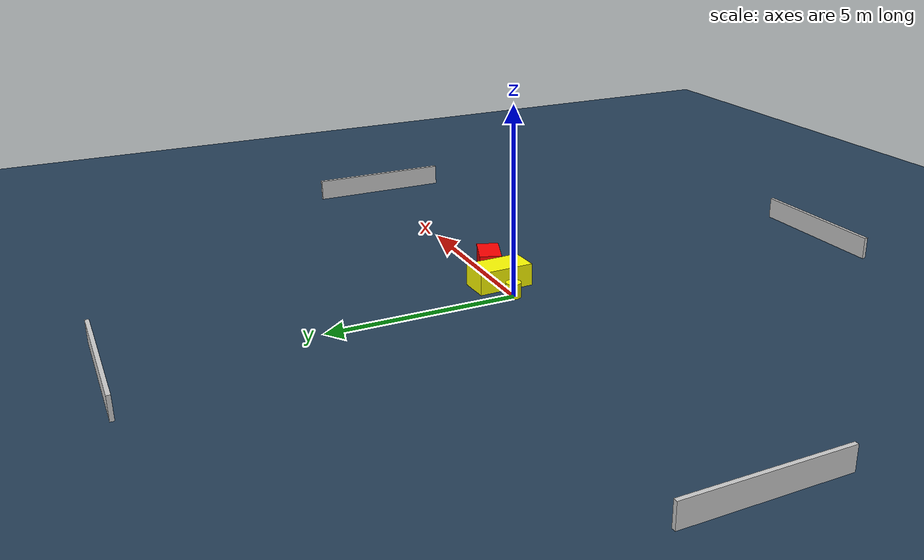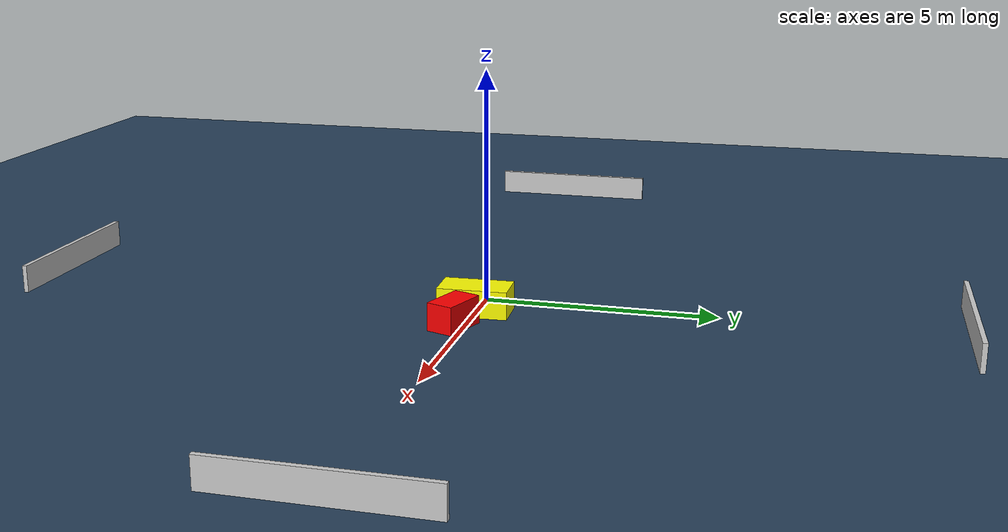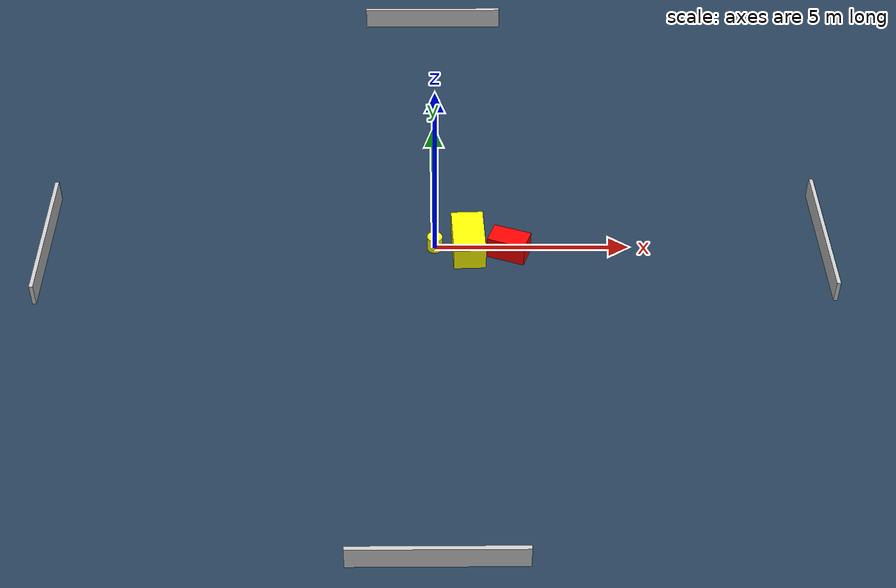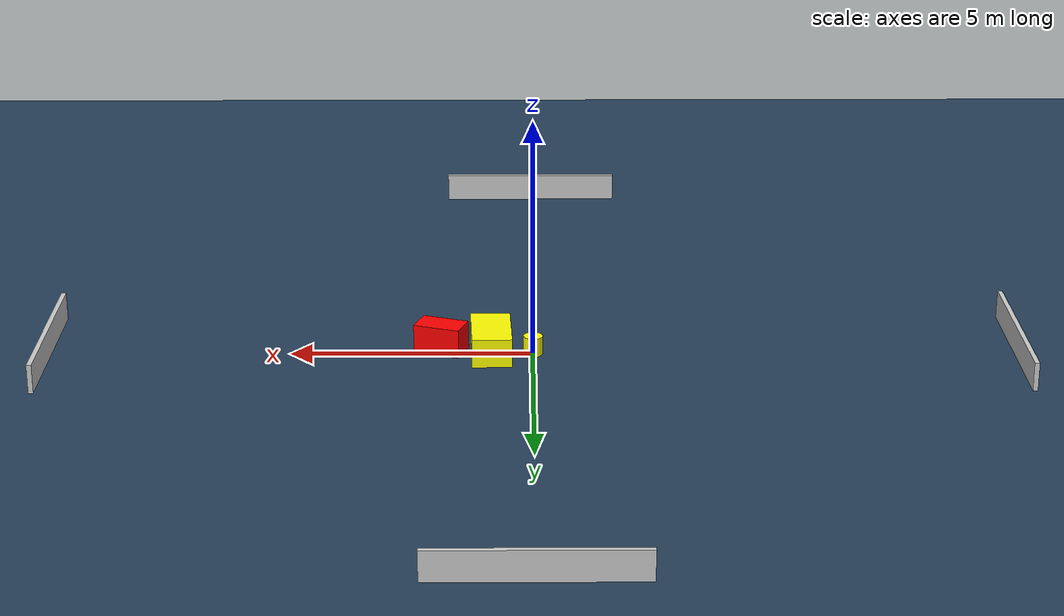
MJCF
<?xml version="1.0" ?>
<mujoco model="generated_environment">
  <option timestep="0.01" integrator="RK4" cone="elliptic"/>
  <default>
    <geom density="1"/>
  </default>
  <asset>
    <texture builtin="gradient" height="3072" name="skybox" rgb1="0.3 0.5 0.7" rgb2="0 0 0" type="skybox" width="512"/>
    <texture builtin="checker" height="300" name="groundplane" rgb1="0.2 0.3 0.4" rgb2="0.1 0.2 0.3" type="2d" width="300"/>
    <material name="groundplane" reflectance="0.2" texrepeat="5 5" texture="groundplane"/>
  </asset>
  <worldbody>
    <light dir="0 0 -1" directional="true" pos="0 0 1.5"/>
    <geom condim="3" friction="0.5 0.005 0.001" material="groundplane" name="floor" pos="0 0 0" size="0 0 0.05" type="plane"/>
    <body name="walls">
      <geom name="wall_1" condim="4" pos="-10.0 0.0 0.3" rgba="0.800000011920929 0.800000011920929 0.800000011920929 1.0" size="0.05 2.0 0.3" type="box"/>
      <geom name="wall_2" condim="4" pos="10.0 0.0 0.3" rgba="0.800000011920929 0.800000011920929 0.800000011920929 1.0" size="0.05 2.0 0.3" type="box"/>
      <geom name="wall_3" condim="4" pos="0.0 -10.0 0.3" rgba="0.800000011920929 0.800000011920929 0.800000011920929 1.0" size="2.0 0.05 0.3" type="box"/>
      <geom name="wall_4" condim="4" pos="0.0 10.0 0.3" rgba="0.800000011920929 0.800000011920929 0.800000011920929 1.0" size="2.0 0.05 0.3" type="box"/>
    </body>
    <body name="robot">
      <joint name="joint_x" type="slide" pos="0 0 0" axis="1 0 0"/>
      <joint name="joint_y" type="slide" pos="0 0 0" axis="0 1 0"/>
      <geom name="robot" type="cylinder" pos="0.0 0.0 0.2" size="0.2 0.2 0.0" mass="5.0" friction="1.0 0.005 0.0001" condim="4" rgba="1.0 1.0 0.0 1.0"/>
    </body>
    <body name="obstacle_1_movable">
      <geom name="obstacle_1_movable" condim="4" pos="0.8629943237929836 -0.017454140723504305 0.3" euler="0 0 2.1314921552074395" friction="0.0 0.005 0.001" rgba="1.0 1.0 0.0 1.0" size="0.41228042834662926 0.7481004462557295 0.3" type="box" mass="0.1"/>
      <joint type="free"/>
    </body>
    <body name="obstacle_2_static">
      <geom name="obstacle_2_static" condim="4" pos="1.8995948288718085 -0.21169033366712062 0.3" euler="0 0 249.97702279752383" friction="0.0 0.005 0.001" rgba="1.0 0.0 0.0 1.0" size="0.29705799189849114 0.49519873183439705 0.3" type="box"/>
    </body>
  </worldbody>
  <actuator>
    <motor name="actuator_x" joint="joint_x" gear="1" ctrlrange="-1 1"/>
    <motor name="actuator_y" joint="joint_y" gear="1" ctrlrange="-1 1"/>
  </actuator>
</mujoco>
